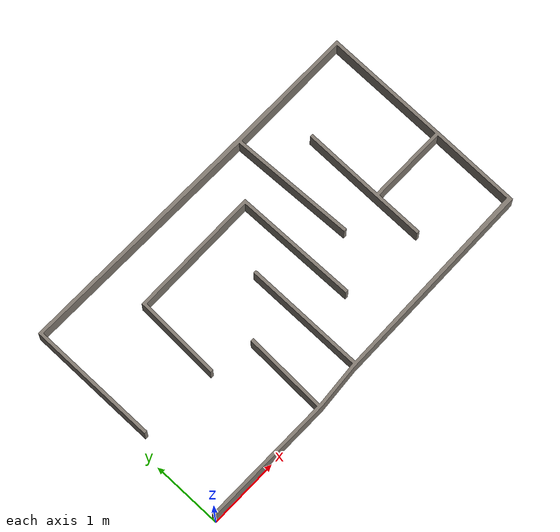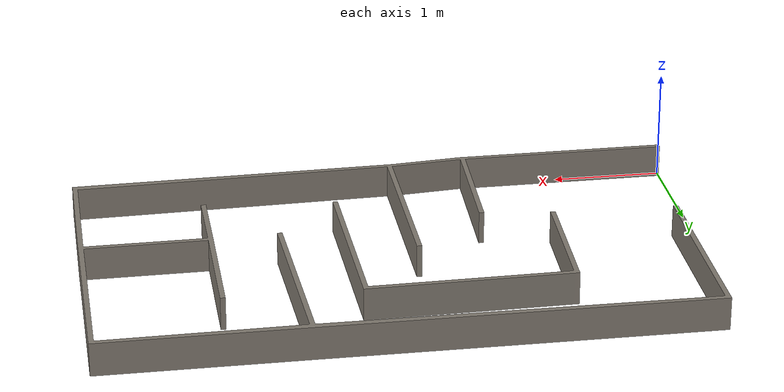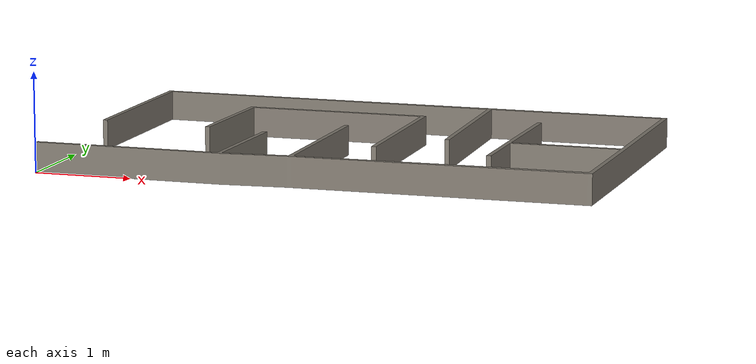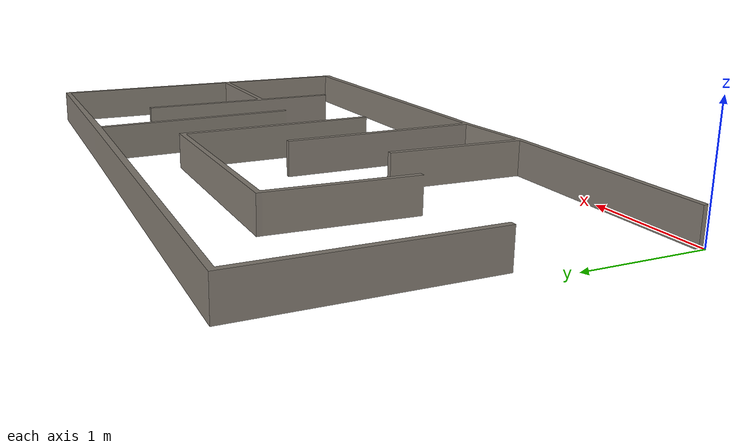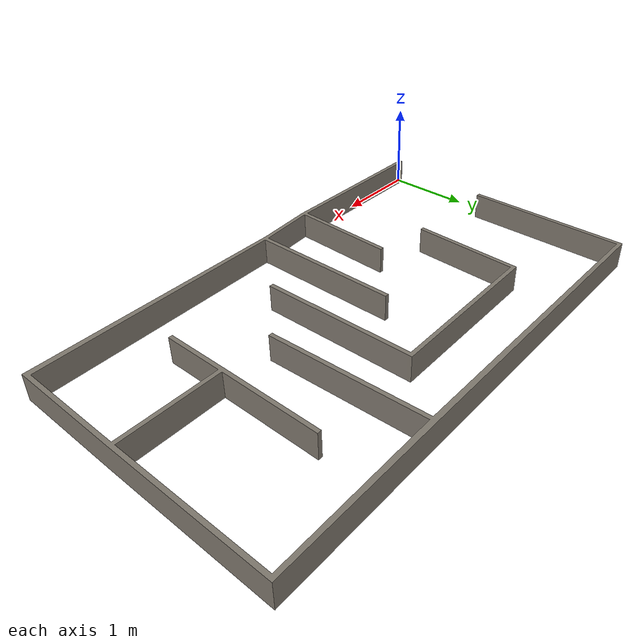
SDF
<?xml version="1.0"?>
<sdf version="1.5">
  <model name="ee484_maze">
    <static>true</static>

    <link name="exterior_link">

      <collision name="base">
        <geometry>
          <mesh>
            <scale>1 1.05 1</scale>
            <uri>model://ee484_maze/meshes/MazeTH1136_IRL.dae</uri>
          </mesh>
        </geometry>
      </collision>
      <visual name="visual">
        <geometry>
          <mesh>
            <scale>1 1.05 1</scale>
            <uri>model://ee484_maze/meshes/MazeTH1136_IRL.dae</uri>
          </mesh>
        </geometry>
      </visual>
    </link>

  </model>
</sdf>
